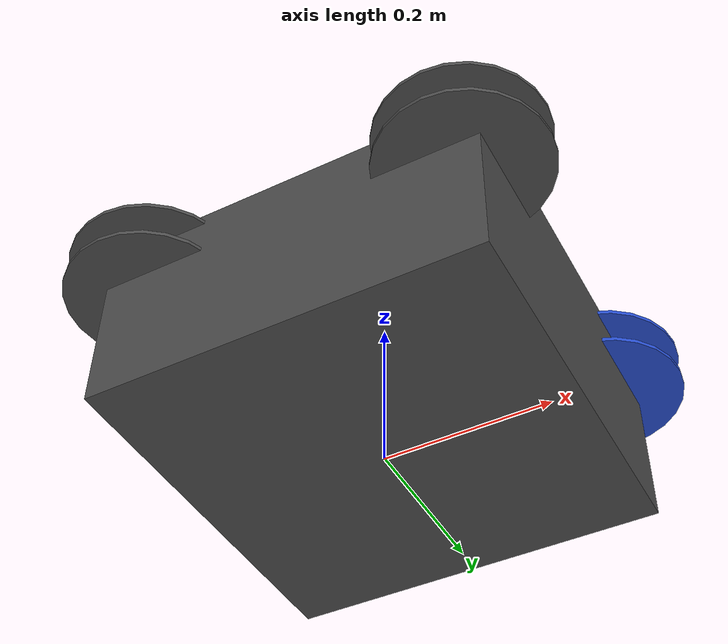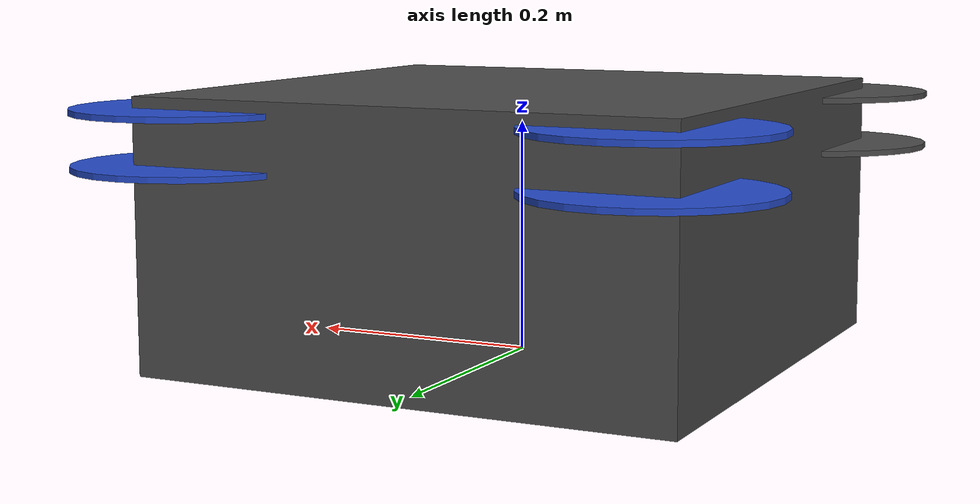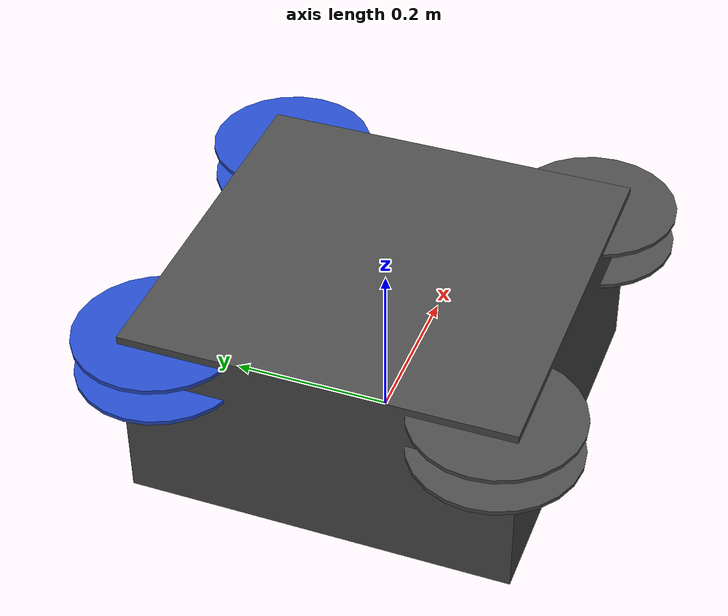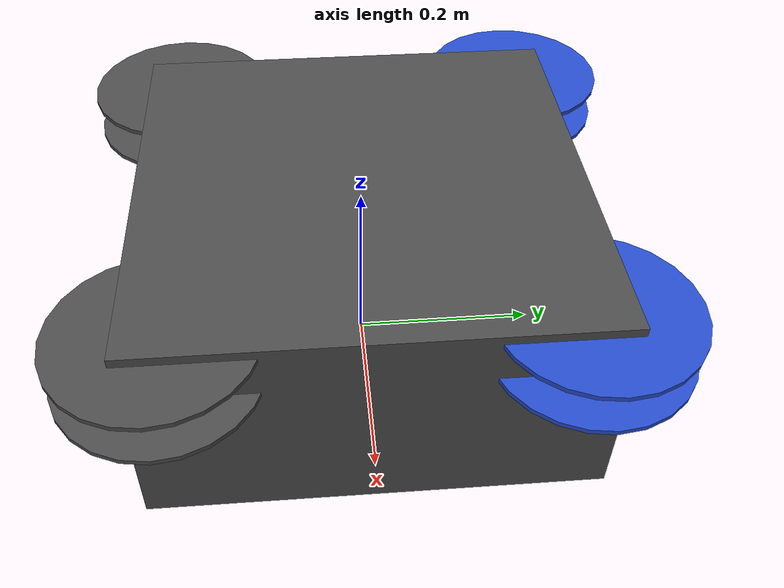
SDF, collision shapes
<?xml version='1.0'?>
<sdf version="1.6">
  <model name="iris_demo">
    <include>
      <uri>model://tole_x8</uri>
    </include>

    <plugin name="rotor_0_blade_1" filename="libLiftDragPlugin.so">
      <a0>0.3</a0><alpha_stall>1.4</alpha_stall>
      <cla>4.2500</cla><cda>0.10</cda><cma>0.00</cma>
      <cla_stall>-0.025</cla_stall><cda_stall>0.0</cda_stall><cma_stall>0.0</cma_stall>
      <area>0.002</area><air_density>1.2041</air_density>
      <cp>0.084 0 0</cp>
      <forward>0 1 0</forward>
      <upward>0 0 1</upward>
      <link_name>iris::rotor_0</link_name>
    </plugin>
    <plugin name="rotor_0_blade_2" filename="libLiftDragPlugin.so">
      <a0>0.3</a0><alpha_stall>1.4</alpha_stall>
      <cla>4.2500</cla><cda>0.10</cda><cma>0.00</cma>
      <cla_stall>-0.025</cla_stall><cda_stall>0.0</cda_stall><cma_stall>0.0</cma_stall>
      <area>0.002</area><air_density>1.2041</air_density>
      <cp>-0.084 0 0</cp>
      <forward>0 -1 0</forward>
      <upward>0 0 1</upward>
      <link_name>iris::rotor_0</link_name>
    </plugin>

    <plugin name="rotor_1_blade_1" filename="libLiftDragPlugin.so">
      <a0>0.3</a0><alpha_stall>1.4</alpha_stall>
      <cla>4.2500</cla><cda>0.10</cda><cma>0.00</cma>
      <cla_stall>-0.025</cla_stall><cda_stall>0.0</cda_stall><cma_stall>0.0</cma_stall>
      <area>0.002</area><air_density>1.2041</air_density>
      <cp>0.084 0 0</cp>
      <forward>0 -1 0</forward>
      <upward>0 0 1</upward>
      <link_name>iris::rotor_1</link_name>
    </plugin>
    <plugin name="rotor_1_blade_2" filename="libLiftDragPlugin.so">
      <a0>0.3</a0><alpha_stall>1.4</alpha_stall>
      <cla>4.2500</cla><cda>0.10</cda><cma>0.00</cma>
      <cla_stall>-0.025</cla_stall><cda_stall>0.0</cda_stall><cma_stall>0.0</cma_stall>
      <area>0.002</area><air_density>1.2041</air_density>
      <cp>-0.084 0 0</cp>
      <forward>0 1 0</forward>
      <upward>0 0 1</upward>
      <link_name>iris::rotor_1</link_name>
    </plugin>

    <plugin name="rotor_2_blade_1" filename="libLiftDragPlugin.so">
      <a0>0.3</a0><alpha_stall>1.4</alpha_stall>
      <cla>4.2500</cla><cda>0.10</cda><cma>0.00</cma>
      <cla_stall>-0.025</cla_stall><cda_stall>0.0</cda_stall><cma_stall>0.0</cma_stall>
      <area>0.002</area><air_density>1.2041</air_density>
      <cp>0.084 0 0</cp>
      <forward>0 -1 0</forward>
      <upward>0 0 1</upward>
      <link_name>iris::rotor_2</link_name>
    </plugin>
    <plugin name="rotor_2_blade_2" filename="libLiftDragPlugin.so">
      <a0>0.3</a0><alpha_stall>1.4</alpha_stall>
      <cla>4.2500</cla><cda>0.10</cda><cma>0.00</cma>
      <cla_stall>-0.025</cla_stall><cda_stall>0.0</cda_stall><cma_stall>0.0</cma_stall>
      <area>0.002</area><air_density>1.2041</air_density>
      <cp>-0.084 0 0</cp>
      <forward>0 1 0</forward>
      <upward>0 0 1</upward>
      <link_name>iris::rotor_2</link_name>
    </plugin>

    <plugin name="rotor_3_blade_1" filename="libLiftDragPlugin.so">
      <a0>0.3</a0><alpha_stall>1.4</alpha_stall>
      <cla>4.2500</cla><cda>0.10</cda><cma>0.00</cma>
      <cla_stall>-0.025</cla_stall><cda_stall>0.0</cda_stall><cma_stall>0.0</cma_stall>
      <area>0.002</area><air_density>1.2041</air_density>
      <cp>0.084 0 0</cp>
      <forward>0 1 0</forward>
      <upward>0 0 1</upward>
      <link_name>iris::rotor_3</link_name>
    </plugin>
    <plugin name="rotor_3_blade_2" filename="libLiftDragPlugin.so">
      <a0>0.3</a0><alpha_stall>1.4</alpha_stall>
      <cla>4.2500</cla><cda>0.10</cda><cma>0.00</cma>
      <cla_stall>-0.025</cla_stall><cda_stall>0.0</cda_stall><cma_stall>0.0</cma_stall>
      <area>0.002</area><air_density>1.2041</air_density>
      <cp>-0.084 0 0</cp>
      <forward>0 -1 0</forward>
      <upward>0 0 1</upward>
      <link_name>iris::rotor_3</link_name>
    </plugin>

    <plugin name="rotor_4_blade_1" filename="libLiftDragPlugin.so">
      <a0>0.3</a0><alpha_stall>1.4</alpha_stall>
      <cla>4.2500</cla><cda>0.10</cda><cma>0.00</cma>
      <cla_stall>-0.025</cla_stall><cda_stall>0.0</cda_stall><cma_stall>0.0</cma_stall>
      <area>0.002</area><air_density>1.2041</air_density>
      <cp>0.084 0 0</cp>
      <forward>0 -1 0</forward>
      <upward>0 0 1</upward>
      <link_name>iris::rotor_4</link_name>
    </plugin>
    <plugin name="rotor_4_blade_2" filename="libLiftDragPlugin.so">
      <a0>0.3</a0><alpha_stall>1.4</alpha_stall>
      <cla>4.2500</cla><cda>0.10</cda><cma>0.00</cma>
      <cla_stall>-0.025</cla_stall><cda_stall>0.0</cda_stall><cma_stall>0.0</cma_stall>
      <area>0.002</area><air_density>1.2041</air_density>
      <cp>-0.084 0 0</cp>
      <forward>0 1 0</forward>
      <upward>0 0 1</upward>
      <link_name>iris::rotor_4</link_name>
    </plugin>

    <plugin name="rotor_5_blade_1" filename="libLiftDragPlugin.so">
      <a0>0.3</a0><alpha_stall>1.4</alpha_stall>
      <cla>4.2500</cla><cda>0.10</cda><cma>0.00</cma>
      <cla_stall>-0.025</cla_stall><cda_stall>0.0</cda_stall><cma_stall>0.0</cma_stall>
      <area>0.002</area><air_density>1.2041</air_density>
      <cp>0.084 0 0</cp>
      <forward>0 1 0</forward>
      <upward>0 0 1</upward>
      <link_name>iris::rotor_5</link_name>
    </plugin>
    <plugin name="rotor_5_blade_2" filename="libLiftDragPlugin.so">
      <a0>0.3</a0><alpha_stall>1.4</alpha_stall>
      <cla>4.2500</cla><cda>0.10</cda><cma>0.00</cma>
      <cla_stall>-0.025</cla_stall><cda_stall>0.0</cda_stall><cma_stall>0.0</cma_stall>
      <area>0.002</area><air_density>1.2041</air_density>
      <cp>-0.084 0 0</cp>
      <forward>0 -1 0</forward>
      <upward>0 0 1</upward>
      <link_name>iris::rotor_5</link_name>
    </plugin>

    <plugin name="rotor_6_blade_1" filename="libLiftDragPlugin.so">
      <a0>0.3</a0><alpha_stall>1.4</alpha_stall>
      <cla>4.2500</cla><cda>0.10</cda><cma>0.00</cma>
      <cla_stall>-0.025</cla_stall><cda_stall>0.0</cda_stall><cma_stall>0.0</cma_stall>
      <area>0.002</area><air_density>1.2041</air_density>
      <cp>0.084 0 0</cp>
      <forward>0 1 0</forward>
      <upward>0 0 1</upward>
      <link_name>iris::rotor_6</link_name>
    </plugin>
    <plugin name="rotor_6_blade_2" filename="libLiftDragPlugin.so">
      <a0>0.3</a0><alpha_stall>1.4</alpha_stall>
      <cla>4.2500</cla><cda>0.10</cda><cma>0.00</cma>
      <cla_stall>-0.025</cla_stall><cda_stall>0.0</cda_stall><cma_stall>0.0</cma_stall>
      <area>0.002</area><air_density>1.2041</air_density>
      <cp>-0.084 0 0</cp>
      <forward>0 -1 0</forward>
      <upward>0 0 1</upward>
      <link_name>iris::rotor_6</link_name>
    </plugin>

    <plugin name="rotor_7_blade_1" filename="libLiftDragPlugin.so">
      <a0>0.3</a0><alpha_stall>1.4</alpha_stall>
      <cla>4.2500</cla><cda>0.10</cda><cma>0.00</cma>
      <cla_stall>-0.025</cla_stall><cda_stall>0.0</cda_stall><cma_stall>0.0</cma_stall>
      <area>0.002</area><air_density>1.2041</air_density>
      <cp>0.084 0 0</cp>
      <forward>0 -1 0</forward>
      <upward>0 0 1</upward>
      <link_name>iris::rotor_7</link_name>
    </plugin>
    <plugin name="rotor_7_blade_2" filename="libLiftDragPlugin.so">
      <a0>0.3</a0><alpha_stall>1.4</alpha_stall>
      <cla>4.2500</cla><cda>0.10</cda><cma>0.00</cma>
      <cla_stall>-0.025</cla_stall><cda_stall>0.0</cda_stall><cma_stall>0.0</cma_stall>
      <area>0.002</area><air_density>1.2041</air_density>
      <cp>-0.084 0 0</cp>
      <forward>0 1 0</forward>
      <upward>0 0 1</upward>
      <link_name>iris::rotor_7</link_name>
    </plugin>

    <plugin name="arducopter_plugin" filename="libArduPilotPlugin.so">
      <fdm_addr>127.0.0.1</fdm_addr>
      <fdm_port_in>9002</fdm_port_in>
      <fdm_port_out>9003</fdm_port_out>
      <modelXYZToAirplaneXForwardZDown>0 0 0 3.141593 0 0</modelXYZToAirplaneXForwardZDown>
      <gazeboXYZToNED>0 0 0 3.141593 0 0</gazeboXYZToNED>
      <imuName>iris_demo::iris::iris/imu_link::imu_sensor</imuName>
      <connectionTimeoutMaxCount>5</connectionTimeoutMaxCount>

      <control channel="0">
        <type>VELOCITY</type><offset>0</offset>
        <p_gain>0.20</p_gain><i_gain>0</i_gain><d_gain>0</d_gain>
        <i_max>0</i_max><i_min>0</i_min><cmd_max>2.5</cmd_max><cmd_min>-2.5</cmd_min>
        <jointName>iris::rotor_0_joint</jointName>
        <multiplier>838</multiplier>
        <controlVelocitySlowdownSim>1</controlVelocitySlowdownSim>
      </control>

      <control channel="1">
        <type>VELOCITY</type><offset>0</offset>
        <p_gain>0.20</p_gain><i_gain>0</i_gain><d_gain>0</d_gain>
        <i_max>0</i_max><i_min>0</i_min><cmd_max>2.5</cmd_max><cmd_min>-2.5</cmd_min>
        <jointName>iris::rotor_2_joint</jointName>
        <multiplier>-838</multiplier>
        <controlVelocitySlowdownSim>1</controlVelocitySlowdownSim>
      </control>

      <control channel="2">
        <type>VELOCITY</type><offset>0</offset>
        <p_gain>0.20</p_gain><i_gain>0</i_gain><d_gain>0</d_gain>
        <i_max>0</i_max><i_min>0</i_min><cmd_max>2.5</cmd_max><cmd_min>-2.5</cmd_min>
        <jointName>iris::rotor_3_joint</jointName>
        <multiplier>838</multiplier>
        <controlVelocitySlowdownSim>1</controlVelocitySlowdownSim>
      </control>

      <control channel="3">
        <type>VELOCITY</type><offset>0</offset>
        <p_gain>0.20</p_gain><i_gain>0</i_gain><d_gain>0</d_gain>
        <i_max>0</i_max><i_min>0</i_min><cmd_max>2.5</cmd_max><cmd_min>-2.5</cmd_min>
        <jointName>iris::rotor_1_joint</jointName>
        <multiplier>-838</multiplier>
        <controlVelocitySlowdownSim>1</controlVelocitySlowdownSim>
      </control>

      <control channel="4">
        <type>VELOCITY</type><offset>0</offset>
        <p_gain>0.20</p_gain><i_gain>0</i_gain><d_gain>0</d_gain>
        <i_max>0</i_max><i_min>0</i_min><cmd_max>2.5</cmd_max><cmd_min>-2.5</cmd_min>
        <jointName>iris::rotor_6_joint</jointName>
        <multiplier>838</multiplier>
        <controlVelocitySlowdownSim>1</controlVelocitySlowdownSim>
      </control>

      <control channel="5">
        <type>VELOCITY</type><offset>0</offset>
        <p_gain>0.20</p_gain><i_gain>0</i_gain><d_gain>0</d_gain>
        <i_max>0</i_max><i_min>0</i_min><cmd_max>2.5</cmd_max><cmd_min>-2.5</cmd_min>
        <jointName>iris::rotor_4_joint</jointName>
        <multiplier>-838</multiplier>
        <controlVelocitySlowdownSim>1</controlVelocitySlowdownSim>
      </control>

      <control channel="6">
        <type>VELOCITY</type><offset>0</offset>
        <p_gain>0.20</p_gain><i_gain>0</i_gain><d_gain>0</d_gain>
        <i_max>0</i_max><i_min>0</i_min><cmd_max>2.5</cmd_max><cmd_min>-2.5</cmd_min>
        <jointName>iris::rotor_5_joint</jointName>
        <multiplier>838</multiplier>
        <controlVelocitySlowdownSim>1</controlVelocitySlowdownSim>
      </control>

      <control channel="7">
        <type>VELOCITY</type><offset>0</offset>
        <p_gain>0.20</p_gain><i_gain>0</i_gain><d_gain>0</d_gain>
        <i_max>0</i_max><i_min>0</i_min><cmd_max>2.5</cmd_max><cmd_min>-2.5</cmd_min>
        <jointName>iris::rotor_7_joint</jointName>
        <multiplier>-838</multiplier>
        <controlVelocitySlowdownSim>1</controlVelocitySlowdownSim>
      </control>

    </plugin>
  </model>
</sdf>

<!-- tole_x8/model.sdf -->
<sdf version='1.5'>
  <model name='iris'>
    <pose>0 0 0.194923 0 0 0</pose>

    <!-- ===== BASE LINK ===== -->
    <link name='base_link'>
      <velocity_decay>
        <linear>0.0</linear>
        <angular>0.0</angular>
      </velocity_decay>
      <inertial>
        <pose>0 0 0 0 0 0</pose>
        <!-- Mass dinaikkan ~2x dari hexacopter (1.5kg) karena 8 motor -->
        <mass>3.0</mass>
        <inertia>
          <ixx>0.016</ixx>
          <ixy>0</ixy>
          <ixz>0</ixz>
          <iyy>0.030</iyy>
          <iyz>0</iyz>
          <izz>0.034</izz>
        </inertia>
      </inertial>
      <collision name='base_link_collision'>
        <pose>0 0 -0.08 0 0 0</pose>
        <geometry>
          <box>
            <size>0.47 0.47 0.23</size>
          </box>
        </geometry>
        <surface>
          <contact>
            <ode>
              <max_vel>100.0</max_vel>
              <min_depth>0.001</min_depth>
            </ode>
          </contact>
          <friction>
            <ode>
              <mu>100000.0</mu>
              <mu2>100000.0</mu2>
            </ode>
          </friction>
        </surface>
      </collision>
      <visual name='base_link_visual'>
        <geometry>
          <mesh>
            <uri>model://tole_x8/meshes/iris.dae</uri>
          </mesh>
        </geometry>
        <material>
          <script>
            <name>Gazebo/DarkGrey</name>
          </script>
        </material>
      </visual>
      <visual name='front_left_leg_visual'>
        <pose>0.123 0.22 -0.11 0 0 0</pose>
        <geometry>
          <cylinder><radius>0.005</radius><length>0.17</length></cylinder>
        </geometry>
        <material>
          <script>
            <name>Gazebo/FlatBlack</name>
            <uri>file://media/materials/scripts/gazebo.material</uri>
          </script>
        </material>
      </visual>
      <visual name='front_right_leg_visual'>
        <pose>0.123 -0.22 -0.11 0 0 0</pose>
        <geometry>
          <cylinder><radius>0.005</radius><length>0.17</length></cylinder>
        </geometry>
        <material>
          <script>
            <name>Gazebo/FlatBlack</name>
            <uri>file://media/materials/scripts/gazebo.material</uri>
          </script>
        </material>
      </visual>
      <visual name='rear_left_leg_visual'>
        <pose>-0.140 0.21 -0.11 0 0 0</pose>
        <geometry>
          <cylinder><radius>0.005</radius><length>0.17</length></cylinder>
        </geometry>
        <material>
          <script>
            <name>Gazebo/FlatBlack</name>
            <uri>file://media/materials/scripts/gazebo.material</uri>
          </script>
        </material>
      </visual>
      <visual name='rear_right_leg_visual'>
        <pose>-0.140 -0.21 -0.11 0 0 0</pose>
        <geometry>
          <cylinder><radius>0.005</radius><length>0.17</length></cylinder>
        </geometry>
        <material>
          <script>
            <name>Gazebo/FlatBlack</name>
            <uri>file://media/materials/scripts/gazebo.material</uri>
          </script>
        </material>
      </visual>
    </link>

    <!-- ===== GROUND TRUTH ODOMETRY ===== -->
    <link name='iris/ground_truth/odometry_sensorgt_link'>
      <pose>0 0 0 0 -0 0</pose>
      <inertial>
        <pose>0 0 0 0 -0 0</pose>
        <mass>0.15</mass>
        <inertia>
          <ixx>0.0001</ixx><ixy>0</ixy><ixz>0</ixz>
          <iyy>0.0002</iyy><iyz>0</iyz><izz>0.0002</izz>
        </inertia>
      </inertial>
    </link>
    <joint name='iris/ground_truth/odometry_sensorgt_joint' type='revolute'>
      <child>iris/ground_truth/odometry_sensorgt_link</child>
      <parent>base_link</parent>
      <axis>
        <xyz>0 0 1</xyz>
        <limit><lower>0</lower><upper>0</upper><effort>0</effort><velocity>0</velocity></limit>
        <dynamics><damping>1.0</damping></dynamics>
        <use_parent_model_frame>1</use_parent_model_frame>
      </axis>
      <physics><ode><implicit_spring_damper>1</implicit_spring_damper></ode></physics>
    </joint>

    <!-- ===== IMU ===== -->
    <link name='iris/imu_link'>
      <inertial>
        <pose>0 0 0 0 0 0</pose>
        <mass>0.15</mass>
        <inertia>
          <ixx>0.00001</ixx><ixy>0</ixy><ixz>0</ixz>
          <iyy>0.00002</iyy><iyz>0</iyz><izz>0.00002</izz>
        </inertia>
      </inertial>
      <sensor name="imu_sensor" type="imu">
        <pose>0 0 0 3.141593 0 0</pose>
        <always_on>1</always_on>
        <update_rate>1000.0</update_rate>
      </sensor>
    </link>
    <joint name='iris/imu_joint' type='revolute'>
      <child>iris/imu_link</child>
      <parent>base_link</parent>
      <axis>
        <xyz>0 0 1</xyz>
        <limit><lower>0</lower><upper>0</upper><effort>0</effort><velocity>0</velocity></limit>
        <dynamics><damping>1.0</damping></dynamics>
        <use_parent_model_frame>1</use_parent_model_frame>
      </axis>
      <physics><ode><implicit_spring_damper>1</implicit_spring_damper></ode></physics>
    </joint>

    <!-- rotor_0: Front-Right Upper (CW) -->
    <link name='rotor_0'>
      <pose>0.2 -0.2 0.023 0 0 0</pose>
      <inertial>
        <pose>0 0 0 0 -0 0</pose>
        <mass>0.025</mass>
        <inertia>
          <ixx>9.75e-06</ixx><ixy>0</ixy><ixz>0</ixz>
          <iyy>0.000166704</iyy><iyz>0</iyz><izz>0.000167604</izz>
        </inertia>
      </inertial>
      <collision name='rotor_0_collision'>
        <pose>0 0 0 0 -0 0</pose>
        <geometry><cylinder><length>0.005</length><radius>0.1</radius></cylinder></geometry>
        <surface><contact><ode/></contact><friction><ode/></friction></surface>
      </collision>
      <visual name='rotor_0_visual'>
        <pose>0 0 0 0 -0 0</pose>
        <geometry>
          <mesh><scale>1 1 1</scale>
            <uri>model://tole_x8/meshes/iris_prop_ccw.dae</uri>
          </mesh>
        </geometry>
        <material><script><name>Gazebo/DarkGrey</name><uri>__default__</uri></script></material>
      </visual>
      <gravity>1</gravity><velocity_decay/><self_collide>0</self_collide>
    </link>
    <joint name='rotor_0_joint' type='revolute'>
      <child>rotor_0</child><parent>base_link</parent>
      <axis>
        <xyz>0 0 1</xyz>
        <limit><lower>-1e+16</lower><upper>1e+16</upper></limit>
        <dynamics><damping>0.004</damping></dynamics>
        <use_parent_model_frame>1</use_parent_model_frame>
      </axis>
      <physics><ode><implicit_spring_damper>1</implicit_spring_damper></ode></physics>
    </joint>

    <!-- rotor_1: Rear-Right Upper (CCW) -->
    <link name='rotor_1'>
      <pose>-0.2 -0.2 0.023 0 0 0</pose>
      <inertial>
        <pose>0 0 0 0 -0 0</pose>
        <mass>0.025</mass>
        <inertia>
          <ixx>9.75e-06</ixx><ixy>0</ixy><ixz>0</ixz>
          <iyy>0.000166704</iyy><iyz>0</iyz><izz>0.000167604</izz>
        </inertia>
      </inertial>
      <collision name='rotor_1_collision'>
        <pose>0 0 0 0 -0 0</pose>
        <geometry><cylinder><length>0.005</length><radius>0.1</radius></cylinder></geometry>
        <surface><contact><ode/></contact><friction><ode/></friction></surface>
      </collision>
      <visual name='rotor_1_visual'>
        <pose>0 0 0 0 -0 0</pose>
        <geometry>
          <mesh><scale>1 1 1</scale>
            <uri>model://tole_x8/meshes/iris_prop_cw.dae</uri>
          </mesh>
        </geometry>
        <material><script><name>Gazebo/DarkGrey</name><uri>__default__</uri></script></material>
      </visual>
      <gravity>1</gravity><velocity_decay/><self_collide>0</self_collide>
    </link>
    <joint name='rotor_1_joint' type='revolute'>
      <child>rotor_1</child><parent>base_link</parent>
      <axis>
        <xyz>0 0 1</xyz>
        <limit><lower>-1e+16</lower><upper>1e+16</upper></limit>
        <dynamics><damping>0.004</damping></dynamics>
        <use_parent_model_frame>1</use_parent_model_frame>
      </axis>
      <physics><ode><implicit_spring_damper>1</implicit_spring_damper></ode></physics>
    </joint>

    <!-- rotor_2: Front-Left Upper (CCW, Blue = marker depan) -->
    <link name='rotor_2'>
      <pose>0.2 0.2 0.023 0 0 0</pose>
      <inertial>
        <pose>0 0 0 0 -0 0</pose>
        <mass>0.025</mass>
        <inertia>
          <ixx>9.75e-06</ixx><ixy>0</ixy><ixz>0</ixz>
          <iyy>0.000166704</iyy><iyz>0</iyz><izz>0.000167604</izz>
        </inertia>
      </inertial>
      <collision name='rotor_2_collision'>
        <pose>0 0 0 0 -0 0</pose>
        <geometry><cylinder><length>0.005</length><radius>0.1</radius></cylinder></geometry>
        <surface><contact><ode/></contact><friction><ode/></friction></surface>
      </collision>
      <visual name='rotor_2_visual'>
        <pose>0 0 0 0 -0 0</pose>
        <geometry>
          <mesh><scale>1 1 1</scale>
            <uri>model://tole_x8/meshes/iris_prop_cw.dae</uri>
          </mesh>
        </geometry>
        <material><script><name>Gazebo/Blue</name><uri>__default__</uri></script></material>
      </visual>
      <gravity>1</gravity><velocity_decay/><self_collide>0</self_collide>
    </link>
    <joint name='rotor_2_joint' type='revolute'>
      <child>rotor_2</child><parent>base_link</parent>
      <axis>
        <xyz>0 0 1</xyz>
        <limit><lower>-1e+16</lower><upper>1e+16</upper></limit>
        <dynamics><damping>0.004</damping></dynamics>
        <use_parent_model_frame>1</use_parent_model_frame>
      </axis>
      <physics><ode><implicit_spring_damper>1</implicit_spring_damper></ode></physics>
    </joint>

    <!-- rotor_3: Rear-Left Upper (CW, Blue) -->
    <link name='rotor_3'>
      <pose>-0.2 0.2 0.023 0 0 0</pose>
      <inertial>
        <pose>0 0 0 0 -0 0</pose>
        <mass>0.025</mass>
        <inertia>
          <ixx>9.75e-06</ixx><ixy>0</ixy><ixz>0</ixz>
          <iyy>0.000166704</iyy><iyz>0</iyz><izz>0.000167604</izz>
        </inertia>
      </inertial>
      <collision name='rotor_3_collision'>
        <pose>0 0 0 0 -0 0</pose>
        <geometry><cylinder><length>0.005</length><radius>0.1</radius></cylinder></geometry>
        <surface><contact><ode/></contact><friction><ode/></friction></surface>
      </collision>
      <visual name='rotor_3_visual'>
        <pose>0 0 0 0 -0 0</pose>
        <geometry>
          <mesh><scale>1 1 1</scale>
            <uri>model://tole_x8/meshes/iris_prop_ccw.dae</uri>
          </mesh>
        </geometry>
        <material><script><name>Gazebo/Blue</name><uri>__default__</uri></script></material>
      </visual>
      <gravity>1</gravity><velocity_decay/><self_collide>0</self_collide>
    </link>
    <joint name='rotor_3_joint' type='revolute'>
      <child>rotor_3</child><parent>base_link</parent>
      <axis>
        <xyz>0 0 1</xyz>
        <limit><lower>-1e+16</lower><upper>1e+16</upper></limit>
        <dynamics><damping>0.004</damping></dynamics>
        <use_parent_model_frame>1</use_parent_model_frame>
      </axis>
      <physics><ode><implicit_spring_damper>1</implicit_spring_damper></ode></physics>
    </joint>

    <!-- ===== LOWER ROTORS (z = -0.023) ===== -->

    <!-- rotor_4: Front-Right Lower (CCW, lawan rotor_0 CW) -->
    <link name='rotor_4'>
      <pose>0.2 -0.2 -0.023 0 0 0</pose>
      <inertial>
        <pose>0 0 0 0 -0 0</pose>
        <mass>0.025</mass>
        <inertia>
          <ixx>9.75e-06</ixx><ixy>0</ixy><ixz>0</ixz>
          <iyy>0.000166704</iyy><iyz>0</iyz><izz>0.000167604</izz>
        </inertia>
      </inertial>
      <collision name='rotor_4_collision'>
        <pose>0 0 0 0 -0 0</pose>
        <geometry><cylinder><length>0.005</length><radius>0.1</radius></cylinder></geometry>
        <surface><contact><ode/></contact><friction><ode/></friction></surface>
      </collision>
      <visual name='rotor_4_visual'>
        <pose>0 0 0 0 -0 0</pose>
        <geometry>
          <mesh><scale>1 1 1</scale>
            <uri>model://tole_x8/meshes/iris_prop_cw.dae</uri>
          </mesh>
        </geometry>
        <material><script><name>Gazebo/DarkGrey</name><uri>__default__</uri></script></material>
      </visual>
      <gravity>1</gravity><velocity_decay/><self_collide>0</self_collide>
    </link>
    <joint name='rotor_4_joint' type='revolute'>
      <child>rotor_4</child><parent>base_link</parent>
      <axis>
        <xyz>0 0 1</xyz>
        <limit><lower>-1e+16</lower><upper>1e+16</upper></limit>
        <dynamics><damping>0.004</damping></dynamics>
        <use_parent_model_frame>1</use_parent_model_frame>
      </axis>
      <physics><ode><implicit_spring_damper>1</implicit_spring_damper></ode></physics>
    </joint>

    <!-- rotor_5: Rear-Right Lower (CW, lawan rotor_1 CCW) -->
    <link name='rotor_5'>
      <pose>-0.2 -0.2 -0.023 0 0 0</pose>
      <inertial>
        <pose>0 0 0 0 -0 0</pose>
        <mass>0.025</mass>
        <inertia>
          <ixx>9.75e-06</ixx><ixy>0</ixy><ixz>0</ixz>
          <iyy>0.000166704</iyy><iyz>0</iyz><izz>0.000167604</izz>
        </inertia>
      </inertial>
      <collision name='rotor_5_collision'>
        <pose>0 0 0 0 -0 0</pose>
        <geometry><cylinder><length>0.005</length><radius>0.1</radius></cylinder></geometry>
        <surface><contact><ode/></contact><friction><ode/></friction></surface>
      </collision>
      <visual name='rotor_5_visual'>
        <pose>0 0 0 0 -0 0</pose>
        <geometry>
          <mesh><scale>1 1 1</scale>
            <uri>model://tole_x8/meshes/iris_prop_ccw.dae</uri>
          </mesh>
        </geometry>
        <material><script><name>Gazebo/DarkGrey</name><uri>__default__</uri></script></material>
      </visual>
      <gravity>1</gravity><velocity_decay/><self_collide>0</self_collide>
    </link>
    <joint name='rotor_5_joint' type='revolute'>
      <child>rotor_5</child><parent>base_link</parent>
      <axis>
        <xyz>0 0 1</xyz>
        <limit><lower>-1e+16</lower><upper>1e+16</upper></limit>
        <dynamics><damping>0.004</damping></dynamics>
        <use_parent_model_frame>1</use_parent_model_frame>
      </axis>
      <physics><ode><implicit_spring_damper>1</implicit_spring_damper></ode></physics>
    </joint>

    <!-- rotor_6: Front-Left Lower (CW, lawan rotor_2 CCW) -->
    <link name='rotor_6'>
      <pose>0.2 0.2 -0.023 0 0 0</pose>
      <inertial>
        <pose>0 0 0 0 -0 0</pose>
        <mass>0.025</mass>
        <inertia>
          <ixx>9.75e-06</ixx><ixy>0</ixy><ixz>0</ixz>
          <iyy>0.000166704</iyy><iyz>0</iyz><izz>0.000167604</izz>
        </inertia>
      </inertial>
      <collision name='rotor_6_collision'>
        <pose>0 0 0 0 -0 0</pose>
        <geometry><cylinder><length>0.005</length><radius>0.1</radius></cylinder></geometry>
        <surface><contact><ode/></contact><friction><ode/></friction></surface>
      </collision>
      <visual name='rotor_6_visual'>
        <pose>0 0 0 0 -0 0</pose>
        <geometry>
          <mesh><scale>1 1 1</scale>
            <uri>model://tole_x8/meshes/iris_prop_ccw.dae</uri>
          </mesh>
        </geometry>
        <material><script><name>Gazebo/Blue</name><uri>__default__</uri></script></material>
      </visual>
      <gravity>1</gravity><velocity_decay/><self_collide>0</self_collide>
    </link>
    <joint name='rotor_6_joint' type='revolute'>
      <child>rotor_6</child><parent>base_link</parent>
      <axis>
        <xyz>0 0 1</xyz>
        <limit><lower>-1e+16</lower><upper>1e+16</upper></limit>
        <dynamics><damping>0.004</damping></dynamics>
        <use_parent_model_frame>1</use_parent_model_frame>
      </axis>
      <physics><ode><implicit_spring_damper>1</implicit_spring_damper></ode></physics>
    </joint>

    <!-- rotor_7: Rear-Left Lower (CCW, lawan rotor_3 CW) -->
    <link name='rotor_7'>
      <pose>-0.2 0.2 -0.023 0 0 0</pose>
      <inertial>
        <pose>0 0 0 0 -0 0</pose>
        <mass>0.025</mass>
        <inertia>
          <ixx>9.75e-06</ixx><ixy>0</ixy><ixz>0</ixz>
          <iyy>0.000166704</iyy><iyz>0</iyz><izz>0.000167604</izz>
        </inertia>
      </inertial>
      <collision name='rotor_7_collision'>
        <pose>0 0 0 0 -0 0</pose>
        <geometry><cylinder><length>0.005</length><radius>0.1</radius></cylinder></geometry>
        <surface><contact><ode/></contact><friction><ode/></friction></surface>
      </collision>
      <visual name='rotor_7_visual'>
        <pose>0 0 0 0 -0 0</pose>
        <geometry>
          <mesh><scale>1 1 1</scale>
            <uri>model://tole_x8/meshes/iris_prop_cw.dae</uri>
          </mesh>
        </geometry>
        <material><script><name>Gazebo/Blue</name><uri>__default__</uri></script></material>
      </visual>
      <gravity>1</gravity><velocity_decay/><self_collide>0</self_collide>
    </link>
    <joint name='rotor_7_joint' type='revolute'>
      <child>rotor_7</child><parent>base_link</parent>
      <axis>
        <xyz>0 0 1</xyz>
        <limit><lower>-1e+16</lower><upper>1e+16</upper></limit>
        <dynamics><damping>0.004</damping></dynamics>
        <use_parent_model_frame>1</use_parent_model_frame>
      </axis>
      <physics><ode><implicit_spring_damper>1</implicit_spring_damper></ode></physics>
    </joint>

    <static>0</static>
  </model>
</sdf>
